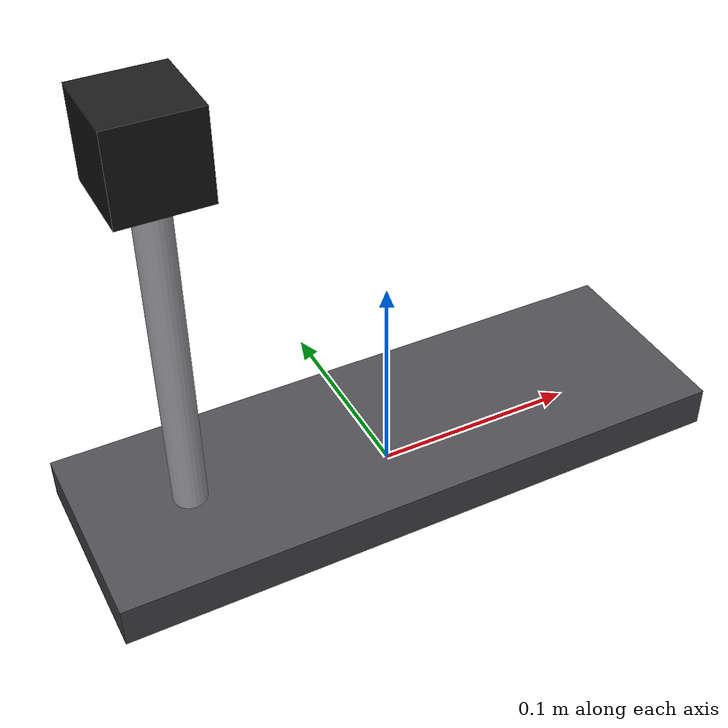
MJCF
<?xml version="1.0" encoding="utf-8"?>
<mujoco model="drill_core_logger">
  <compiler angle="radian" autolimits="true"/>
  <default>
    <default class="body"><geom contype="1" conaffinity="1"/></default>
  </default>
  <worldbody>
    <body name="base">
      <geom type="box" size="0.15 0.05 0.01" pos="0 0 0.01" rgba="0.3 0.3 0.32 1" class="body"/>
      <geom type="cylinder" size="0.008 0.10" pos="-0.10 0 0.11" rgba="0.75 0.75 0.78 1" class="body"/>
      <body name="scanner_head" pos="-0.10 0 0.20">
        <joint name="scanner_head_joint" type="slide" axis="1 0 0" range="-0.08 0.08" damping="1.0" frictionloss="0.3"/>
  <geom type="box" size="0.02 0.02 0.02" pos="0 0 0" rgba="0.1 0.1 0.1 1" class="body"/>
      </body>
    </body>
  </worldbody>
</mujoco>
